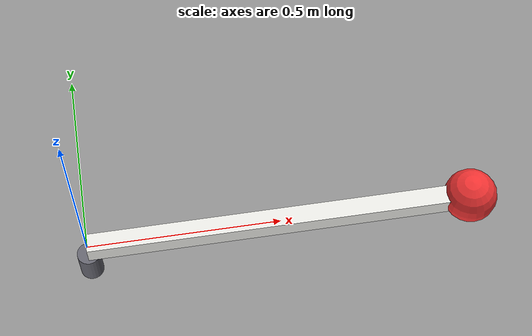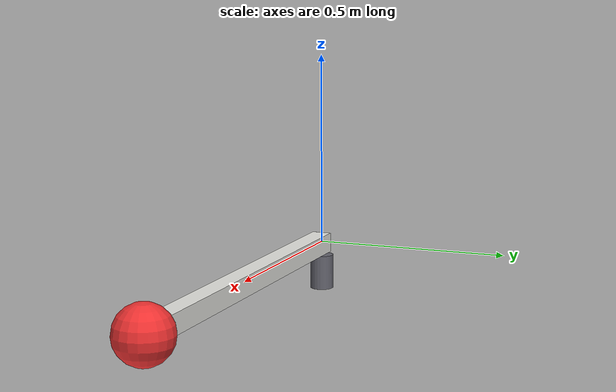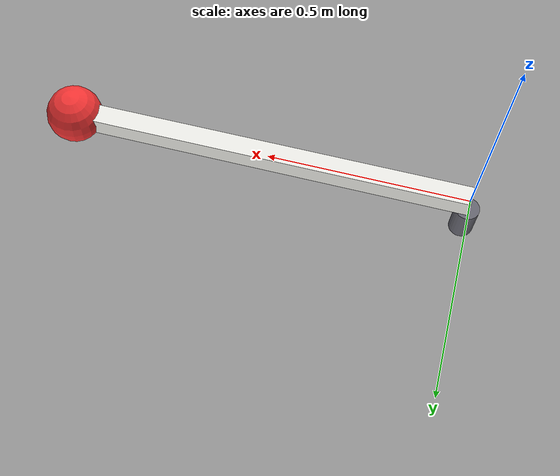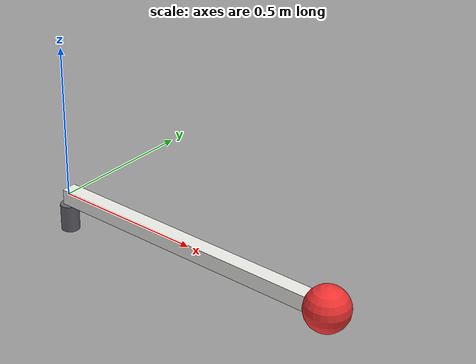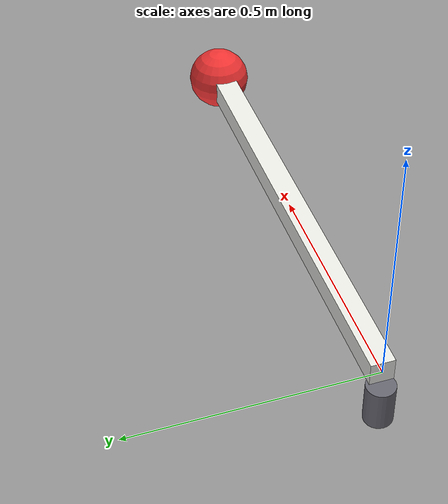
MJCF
<mujoco model="RotorTorque">

  <compiler angle="radian"/>
  <default>
    <joint type="hinge" damping="0"/>
  </default>

  <worldbody>
    <!-- 静态支柱：灰色短柱（无关节 → spawn 后固定不动），标出转轴，与臂留 1 cm 间隙 -->
    <body name="mount">
      <geom name="pillar" type="cylinder" size="0.03 0.045" pos="0 0 -0.08" rgba="0.40 0.40 0.44 1"/>

      <!-- 旋臂：绕 z 轴水平扫掠，白色梁 + 红色端球（mass=0 视觉标定） -->
      <body name="rotor">
        <joint name="turn" axis="0 0 1"/>
        <geom name="arm" type="box" size="0.5 0.025 0.025" pos="0.5 0 0" mass="1" rgba="0.92 0.92 0.90 1"/>
        <geom name="tip" type="sphere" size="0.07" pos="1.0 0 0" mass="0" rgba="0.95 0.20 0.20 1"/>
        <site name="tip" pos="1.0 0 0"/>
      </body>
    </body>
  </worldbody>

  <actuator>
    <motor name="turn_motor" joint="turn" gear="1" ctrlrange="-5 5"/>
  </actuator>
</mujoco>
